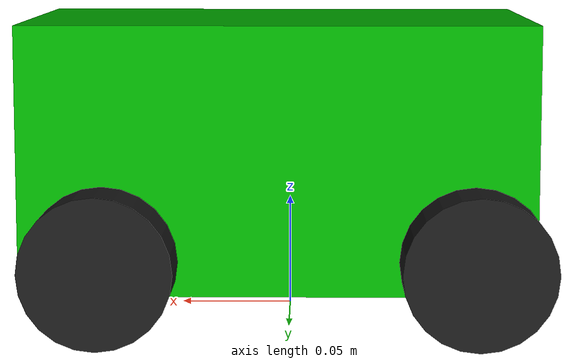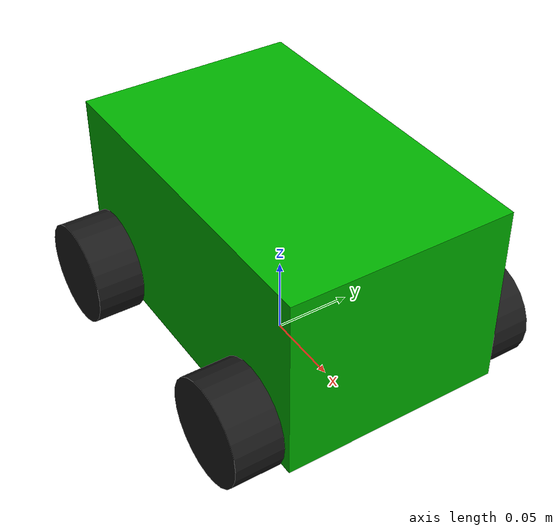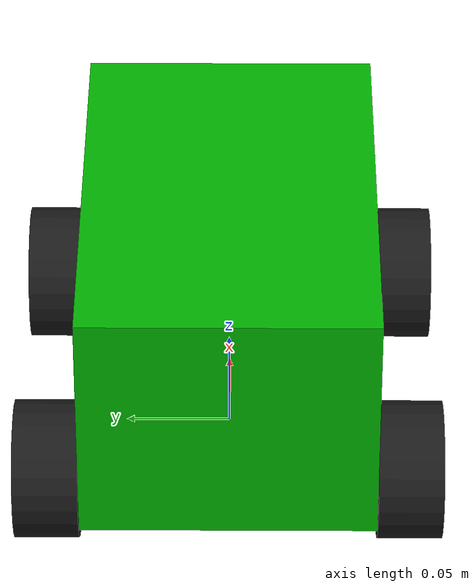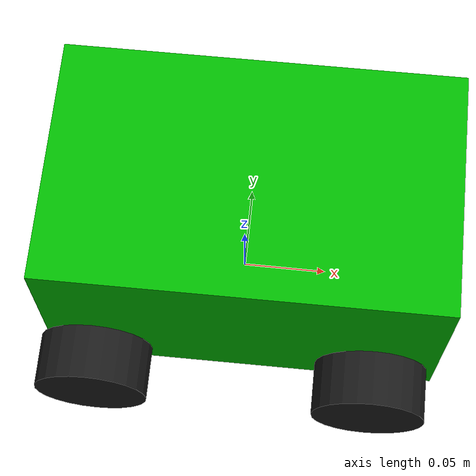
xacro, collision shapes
<?xml version = '1.0'?>
<robot xmlns:xacro = 'http://www.ros.org/wiki/xacro'>
    <!-- PROPERTIES -->
    <xacro:property name = 'a' value = '1.0'/>              <!-- scalar used for inertia -->
    <xacro:property name = 'd' value = '1.0'/>              <!-- scalar used for damping -->
    <xacro:property name = 'o' value = '0.0'/>              <!-- tuneable offset for wheel collision -->
    <xacro:property name = 'c_mass' value = '2.415'/>       <!-- chassis mass, default is 2.415 -->
    <xacro:property name = 'w_mass' value = '0.575175'/>    <!-- wheel mass, default is 0.0575175 -->

    <material name = 'black'>
        <color rgba = '0.1 0.1 0.1 1'/>
    </material>

    <material name = 'green'>
        <color rgba = '0 0.7 0 1'/>
    </material>

    <material name = 'gray'>
        <color rgba = '0.83 0.83 0.83 1'/>
    </material>

    <!-- MACROS -->
    <xacro:macro name = 'cylinder_inertia' params = 'mass radius length'>
        <inertia
            ixx = '${a * mass * (3 * radius**2 + length**2) / 12}'
            ixy = '0'
            ixz = '0'
            iyy = '${a * mass * (3 * radius**2 + length**2) / 12}'
            iyz = '0'
            izz = '${a * mass * radius**2 / 12}'
        />
    </xacro:macro>

    <xacro:macro name = 'box_inertia' params = 'mass w h d'>
        <inertia
            ixx = '${a * mass * (h**2 + d**2) / 12}'
            ixy = '0'
            ixz = '0'
            iyy = '${a * mass * (w**2 + h**2) / 12}'
            iyz = '0'
            izz = '${a * mass * (w**2 + d**2) / 12}'
        />
    </xacro:macro>

    <!-- BASE LINK & CHASSIS LINK -->
    <!-- base link -->
    <link name = 'base_footprint'>
    </link>

    <!-- chassis link -->
    <link name = 'base_link'>
        <visual>
            <origin xyz = '0 0 0' rpy = '0 0 0'/>
            <geometry>
                <mesh filename = 'file://$(find sim_robot_description)/meshes/chassis.STL'/>
            </geometry>
            <material name = 'green'/>
        </visual>

        <collision>
            <origin xyz = '0.00475 0 0.004' rpy = '0 0 0'/>   <!-- collision box moved to match visual -->
            <geometry>
                <box size = '0.2235 0.139 0.1165'/>
            </geometry>
        </collision>

        <inertial>
            <mass value = '${c_mass}'/>
            <xacro:box_inertia
                mass = '${c_mass}'
                w = '0.2235'
                h = '0.1165'
                d = '0.139'
            />
        </inertial>
    </link>

    <!-- chassis to base joint -->
    <joint name = 'base_joint' type = 'fixed'>
        <parent link = 'base_footprint'/>
        <child link = 'base_link'/>
        <origin xyz = '0 0 0.07115' rpy = '0 0 0'/> <!-- origin offset of 0.07115 -->
    </joint>

    <!-- WHEEL LINKS & JOINTS -->
    <!-- front right wheel link -->
    <link name = 'front_right_wheel_link'>
        <visual>
            <origin xyz = '0 0 0' rpy = '1.570796 0 0'/>
            <geometry>
                <mesh filename = 'file://$(find sim_robot_description)/meshes/front_right_wheel.STL'/>
            </geometry>
            <material name = 'black'/>
        </visual>

        <collision>
            <origin xyz = '0 0 ${-o}' rpy = '1.570796 0 0'/>
            <geometry>
                <cylinder radius = '0.0325' length = '0.03035'/>
            </geometry>
        </collision>

        <inertial>
            <mass value = '${w_mass}'/>
            <xacro:cylinder_inertia
                mass = '${w_mass}'
                radius = '0.0325'
                length = '0.03035'
            />
        </inertial>
    </link>

    <!-- front right wheel to chassis joint -->
    <joint name = 'front_right_joint' type = 'continuous'>
        <origin xyz = '0.08 -0.08475 -0.0389' rpy = '0 0 0'/>
        <parent link = 'base_link'/>
        <child link = 'front_right_wheel_link'/>
        <axis xyz = '0 1 0' rpy = '0 0 0'/>
        <dynamics damping = '${d}'/>
    </joint>

    <!-- front left wheel link -->
    <link name = 'front_left_wheel_link'>
        <visual>
            <origin xyz = '0 0 0' rpy = '1.570796 0 0'/>
            <geometry>
                <mesh filename = 'file://$(find sim_robot_description)/meshes/front_left_wheel.STL'/>
            </geometry>
            <material name = 'black'/>
        </visual>

        <collision>
            <origin xyz = '0 0 ${-o}' rpy = '1.570796 0 0'/>
            <geometry>
                <cylinder radius = '0.0325' length = '0.03035'/>
            </geometry>
        </collision>

        <inertial>
            <mass value = '${w_mass}'/>
            <xacro:cylinder_inertia
                mass = '${w_mass}'
                radius = '0.0325'
                length = '0.03035'
            />
        </inertial>
    </link>

    <!-- front left wheel to chassis joint -->
    <joint name = 'front_left_joint' type = 'continuous'>
        <origin xyz = '0.08 0.08475 -0.0389' rpy = '0 0 0'/>
        <parent link = 'base_link'/>
        <child link = 'front_left_wheel_link'/>
        <axis xyz = '0 1 0' rpy = '0 0 0'/>
        <dynamics damping = '${d}'/>
    </joint>

    <!-- back right wheel link -->
    <link name = 'back_right_wheel_link'>
        <visual>
            <origin xyz = '0 0 0' rpy = '1.570796 0 0'/>
            <geometry>
                <mesh filename = 'file://$(find sim_robot_description)/meshes/back_right_wheel.STL'/>
            </geometry>
            <material name = 'black'/>
        </visual>

        <collision>
            <origin xyz = '0 0 ${-o}' rpy = '1.570796 0 0'/>
            <geometry>
                <cylinder radius = '0.0325' length = '0.03035'/>
            </geometry>
        </collision>

        <inertial>
            <mass value = '${w_mass}'/>
            <xacro:cylinder_inertia
                mass = '${w_mass}'
                radius = '0.0325'
                length = '0.03035'
            />
        </inertial>
    </link>

    <!-- back right wheel to chassis joint -->
    <joint name = 'back_right_joint' type = 'continuous'>
        <origin xyz = '-0.08 -0.08475 -0.0389' rpy = '0 0 0'/>   <!-- z was -0.03946 -->
        <parent link = 'base_link'/>
        <child link = 'back_right_wheel_link'/>
        <axis xyz = '0 1 0' rpy = '0 0 0'/>
        <dynamics damping = '${d}'/>
    </joint>

    <!-- back left wheel link -->
    <link name = 'back_left_wheel_link'>
        <visual>
            <origin xyz = '0 0 0' rpy = '1.570796 0 0'/>
            <geometry>
                <mesh filename = 'file://$(find sim_robot_description)/meshes/back_left_wheel.STL'/>
            </geometry>
            <material name = 'black'/>
        </visual>

        <collision>
            <origin xyz = '0 0 ${-o}' rpy = '1.570796 0 0'/>
            <geometry>
                <cylinder radius = '0.0325' length = '0.03035'/>
            </geometry>
        </collision>

        <inertial>
            <mass value = '${w_mass}'/>
            <xacro:cylinder_inertia
                mass = '${w_mass}'
                radius = '0.0325'
                length = '0.03035'
            />
        </inertial>
    </link>

    <!-- back left wheel to chassis joint -->
    <joint name = 'back_left_joint' type = 'continuous'>
        <origin xyz = '-0.08 0.08475 -0.0389' rpy = '0 0 0'/> <!-- z was -0.03954 -->
        <parent link = 'base_link'/>
        <child link = 'back_left_wheel_link'/>
        <axis xyz = '0 1 0' rpy = '0 0 0'/>
        <dynamics damping = '${d}'/>
    </joint>
</robot>
